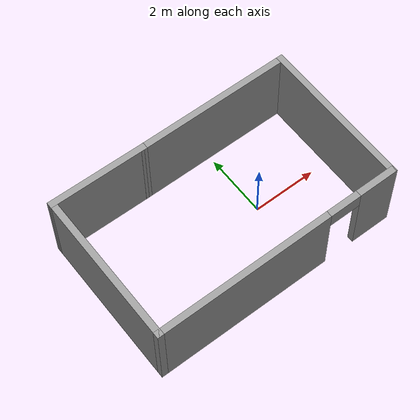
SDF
<?xml version='1.0'?>
<sdf version='1.4'>
  <model name='BasicButtonSim'>
    <link name='Wall_28'>
      <collision name='Wall_28_Collision'>
        <geometry>
          <box>
            <size>4.98745 0.2 2.5</size>
          </box>
        </geometry>
        <pose>0 0 1.25 0 -0 0</pose>
      </collision>
      <visual name='Wall_28_Visual'>
        <pose>0 0 1.25 0 -0 0</pose>
        <geometry>
          <box>
            <size>4.98745 0.2 2.5</size>
          </box>
        </geometry>
        <material>
          <script>
            <uri>file://media/materials/scripts/gazebo.material</uri>
            <name>Gazebo/Grey</name>
          </script>
        </material>
      </visual>
      <velocity_decay>
        <linear>0</linear>
        <angular>0</angular>
      </velocity_decay>
      <pose>0.222968 2.30005 0 0 -0 0</pose>
    </link>
    <link name='Wall_29'>
      <collision name='Wall_29_Collision'>
        <geometry>
          <box>
            <size>4.82875 0.2 2.5</size>
          </box>
        </geometry>
        <pose>0 0 1.25 0 -0 0</pose>
      </collision>
      <visual name='Wall_29_Visual'>
        <pose>0 0 1.25 0 -0 0</pose>
        <geometry>
          <box>
            <size>4.82875 0.2 2.5</size>
          </box>
        </geometry>
        <material>
          <script>
            <uri>file://media/materials/scripts/gazebo.material</uri>
            <name>Gazebo/Grey</name>
          </script>
        </material>
      </visual>
      <velocity_decay>
        <linear>0</linear>
        <angular>0</angular>
      </velocity_decay>
      <pose>2.61669 -0.014323 0 0 0 -1.5708</pose>
    </link>
    <link name='Wall_30'>
      <pose>-1.21194 -2.3287 0 0 -0 3.14159</pose>
      <visual name='Wall_30_Visual_0'>
        <pose>-3.28885 0 1.25 0 -0 0</pose>
        <geometry>
          <box>
            <size>1.27957 0.2 2.5</size>
          </box>
        </geometry>
        <material>
          <script>
            <uri>file://media/materials/scripts/gazebo.material</uri>
            <name>Gazebo/Grey</name>
          </script>
        </material>
      </visual>
      <collision name='Wall_30_Collision_0'>
        <geometry>
          <box>
            <size>1.27957 0.2 2.5</size>
          </box>
        </geometry>
        <pose>-3.28885 0 1.25 0 -0 0</pose>
      </collision>
      <visual name='Wall_30_Visual_1'>
        <pose>1.13979 0 1.25 0 -0 0</pose>
        <geometry>
          <box>
            <size>5.5777 0.2 2.5</size>
          </box>
        </geometry>
        <material>
          <script>
            <uri>file://media/materials/scripts/gazebo.material</uri>
            <name>Gazebo/Grey</name>
          </script>
        </material>
      </visual>
      <collision name='Wall_30_Collision_1'>
        <geometry>
          <box>
            <size>5.5777 0.2 2.5</size>
          </box>
        </geometry>
        <pose>1.13979 0 1.25 0 -0 0</pose>
      </collision>
      <visual name='Wall_30_Visual_2'>
        <pose>-2.14906 0 2.25 0 -0 0</pose>
        <geometry>
          <box>
            <size>1 0.2 0.5</size>
          </box>
        </geometry>
        <material>
          <script>
            <uri>file://media/materials/scripts/gazebo.material</uri>
            <name>Gazebo/Grey</name>
          </script>
        </material>
      </visual>
      <collision name='Wall_30_Collision_2'>
        <geometry>
          <box>
            <size>1 0.2 0.5</size>
          </box>
        </geometry>
        <pose>-2.14906 0 2.25 0 -0 0</pose>
      </collision>
    </link>
    <link name='Wall_31'>
      <collision name='Wall_31_Collision'>
        <geometry>
          <box>
            <size>4.8552 0.2 2.5</size>
          </box>
        </geometry>
        <pose>0 0 1.25 0 -0 0</pose>
      </collision>
      <visual name='Wall_31_Visual'>
        <pose>0 0 1.25 0 -0 0</pose>
        <geometry>
          <box>
            <size>4.8552 0.2 2.5</size>
          </box>
        </geometry>
        <material>
          <script>
            <uri>file://media/materials/scripts/gazebo.material</uri>
            <name>Gazebo/Grey</name>
          </script>
        </material>
      </visual>
      <velocity_decay>
        <linear>0</linear>
        <angular>0</angular>
      </velocity_decay>
      <pose>-5.04058 -0.001098 0 0 -0 1.5708</pose>
    </link>
    <link name='Wall_32'>
      <collision name='Wall_32_Collision'>
        <geometry>
          <box>
            <size>3.06995 0.2 2.5</size>
          </box>
        </geometry>
        <pose>0 0 1.25 0 -0 0</pose>
      </collision>
      <visual name='Wall_32_Visual'>
        <pose>0 0 1.25 0 -0 0</pose>
        <geometry>
          <box>
            <size>3.06995 0.2 2.5</size>
          </box>
        </geometry>
        <material>
          <script>
            <uri>file://media/materials/scripts/gazebo.material</uri>
            <name>Gazebo/Grey</name>
          </script>
        </material>
      </visual>
      <velocity_decay>
        <linear>0</linear>
        <angular>0</angular>
      </velocity_decay>
      <pose>-3.60567 2.31328 0 0 0 -0.009216</pose>
    </link>
    <static>1</static>
  </model>
</sdf>
